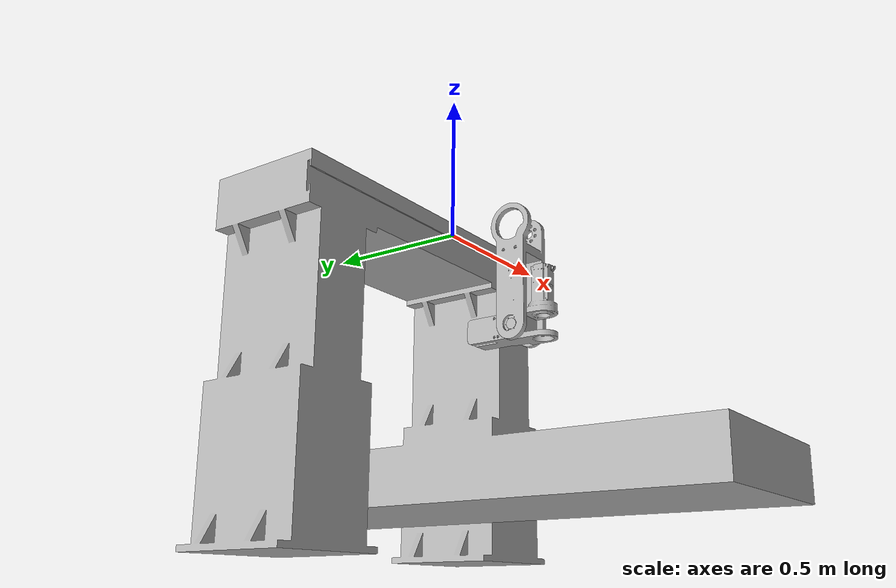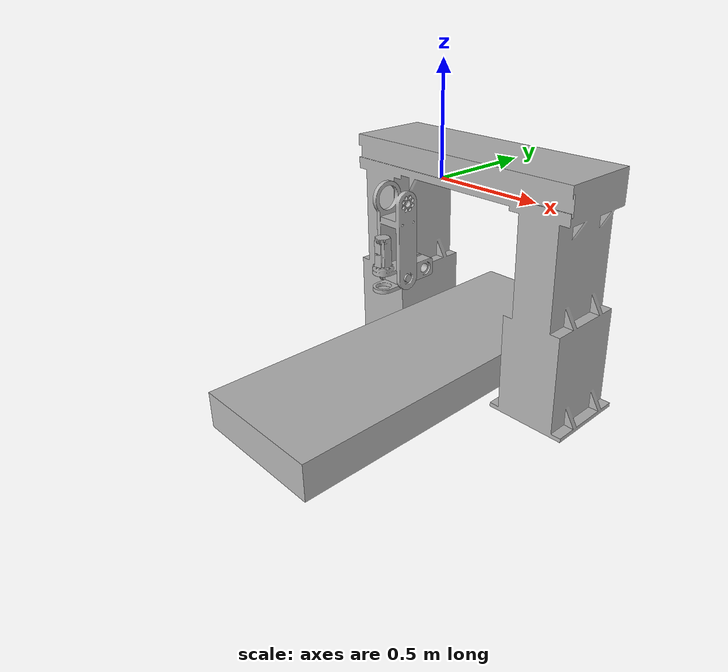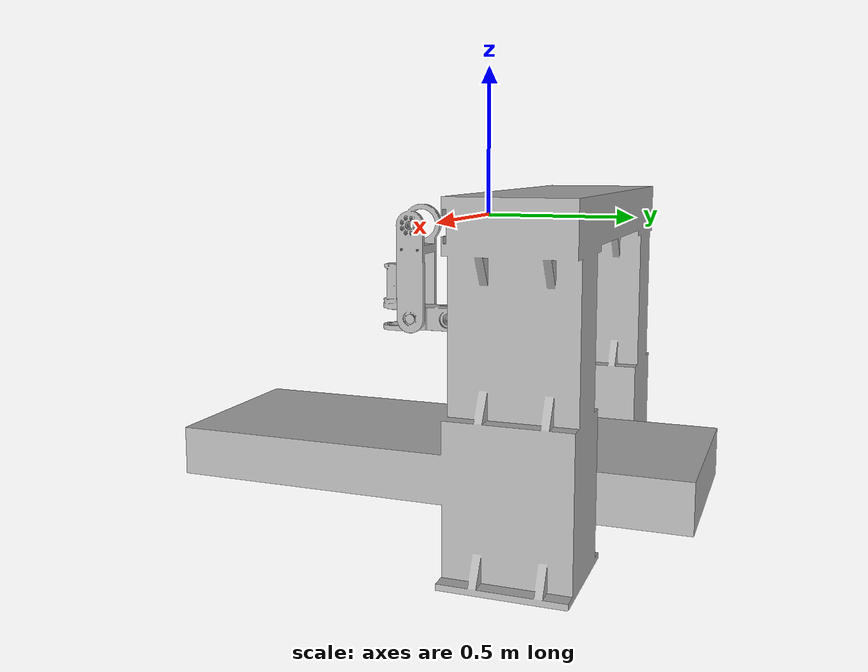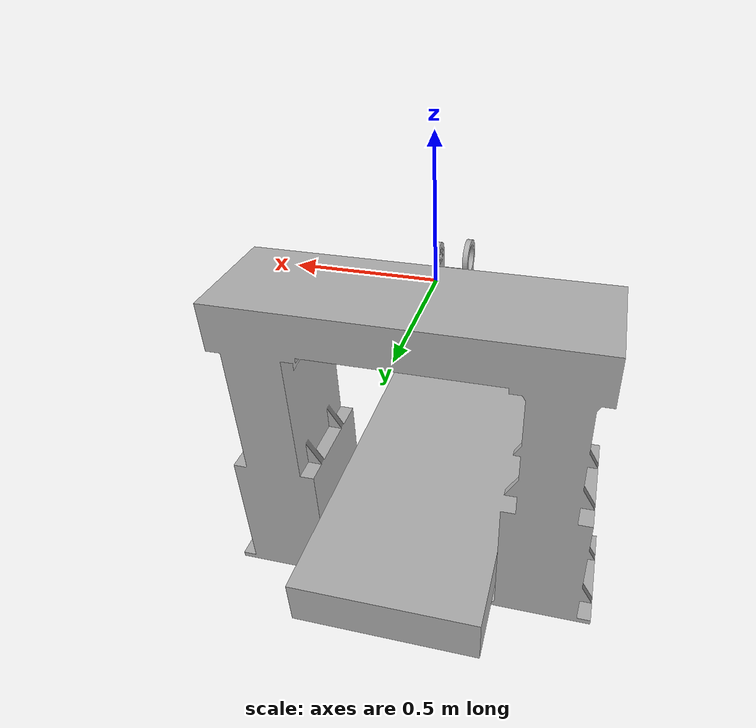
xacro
<?xml version="1.0" ?>
<robot name="gantrysystem" xmlns:xacro="http://www.ros.org/wiki/xacro">

<xacro:include filename="$(find gantrysystem_description)/urdf/materials.xacro" />
<xacro:include filename="$(find gantrysystem_description)/urdf/gantrysystem.trans" />
<xacro:include filename="$(find gantrysystem_description)/urdf/gantrysystem.gazebo" />
<link name="base_link">
  <inertial>
    <origin xyz="-1.5610126300015453e-16 0.09398108126787207 -0.6182394904022698" rpy="0 0 0"/>
    <mass value="3746.7382750000006"/>
    <inertia ixx="1051.074959" iyy="957.148094" izz="1099.938471" ixy="-0.0" iyz="-148.10353" ixz="0.0"/>
  </inertial>
  <visual>
    <origin xyz="0 0 0" rpy="0 0 0"/>
    <geometry>
      <mesh filename="package://gantrysystem_description/meshes/base_link.stl" scale="0.001 0.001 0.001"/>
    </geometry>
    <material name="silver"/>
  </visual>
  <collision>
    <origin xyz="0 0 0" rpy="0 0 0"/>
    <geometry>
      <mesh filename="package://gantrysystem_description/meshes/base_link.stl" scale="0.001 0.001 0.001"/>
    </geometry>
  </collision>
</link>

<link name="link_1_1">
  <inertial>
    <origin xyz="-1.09649012824359e-17 -0.02516751862657656 -2.842170943040401e-16" rpy="0 0 0"/>
    <mass value="13.022522"/>
    <inertia ixx="0.086021" iyy="0.133021" izz="0.050351" ixy="0.0" iyz="-0.0" ixz="0.0"/>
  </inertial>
  <visual>
    <origin xyz="-0.0 -0.075 0.0" rpy="0 0 0"/>
    <geometry>
      <mesh filename="package://gantrysystem_description/meshes/link_1_1.stl" scale="0.001 0.001 0.001"/>
    </geometry>
    <material name="silver"/>
  </visual>
  <collision>
    <origin xyz="-0.0 -0.075 0.0" rpy="0 0 0"/>
    <geometry>
      <mesh filename="package://gantrysystem_description/meshes/link_1_1.stl" scale="0.001 0.001 0.001"/>
    </geometry>
  </collision>
</link>

<link name="link_2_1">
  <inertial>
    <origin xyz="-1.7176481619885324e-17 -0.026033994334277534 -2.1316282072803005e-16" rpy="0 0 0"/>
    <mass value="16.626300000000004"/>
    <inertia ixx="0.127081" iyy="0.170937" izz="0.048624" ixy="0.0" iyz="-0.0" ixz="-0.0"/>
  </inertial>
  <visual>
    <origin xyz="0.0 -0.045 0.0" rpy="0 0 0"/>
    <geometry>
      <mesh filename="package://gantrysystem_description/meshes/link_2_1.stl" scale="0.001 0.001 0.001"/>
    </geometry>
    <material name="silver"/>
  </visual>
  <collision>
    <origin xyz="0.0 -0.045 0.0" rpy="0 0 0"/>
    <geometry>
      <mesh filename="package://gantrysystem_description/meshes/link_2_1.stl" scale="0.001 0.001 0.001"/>
    </geometry>
  </collision>
</link>

<joint name="joint_1" type="continuous">
  <origin xyz="0.0 0.075 0.0" rpy="0 0 0"/>
  <parent link="base_link"/>
  <child link="link_1_1"/>
  <axis xyz="0.0 -1.0 0.0"/>
</joint>

<joint name="joint_2" type="continuous">
  <origin xyz="-0.0 -0.03 0.0" rpy="0 0 0"/>
  <parent link="link_1_1"/>
  <child link="link_2_1"/>
  <axis xyz="0.0 -1.0 0.0"/>
</joint>

</robot>

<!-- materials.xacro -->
<robot name="gantrysystem" xmlns:xacro="http://www.ros.org/wiki/xacro" >

<material name="silver">
  <color rgba="0.700 0.700 0.700 1.000"/>
</material>

</robot>

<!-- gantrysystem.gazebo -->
<robot name="gantrysystem" xmlns:xacro="http://www.ros.org/wiki/xacro" >

<xacro:property name="body_color" value="Gazebo/Silver" />

<gazebo>
  <plugin name="control" filename="libgazebo_ros_control.so"/>
</gazebo>
<gazebo reference="base_link">
  <material>${body_color}</material>
  <mu1>0.2</mu1>
  <mu2>0.2</mu2>
  <selfCollide>true</selfCollide>
  <gravity>true</gravity>
</gazebo>

<gazebo reference="link_1_1">
  <material>${body_color}</material>
  <mu1>0.2</mu1>
  <mu2>0.2</mu2>
  <selfCollide>true</selfCollide>
</gazebo>

<gazebo reference="link_2_1">
  <material>${body_color}</material>
  <mu1>0.2</mu1>
  <mu2>0.2</mu2>
  <selfCollide>true</selfCollide>
</gazebo>

</robot>
